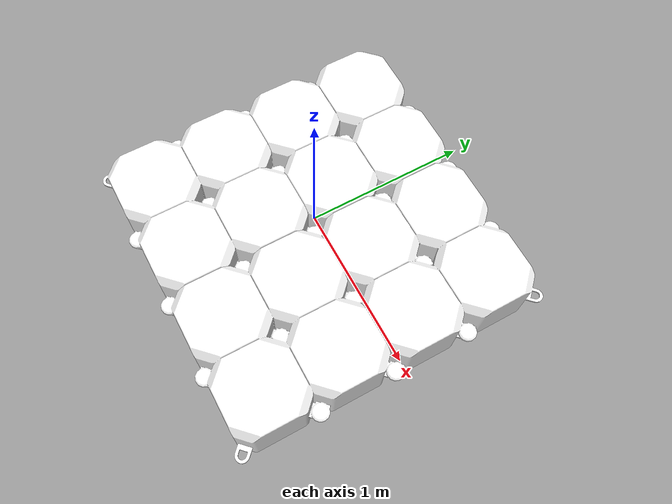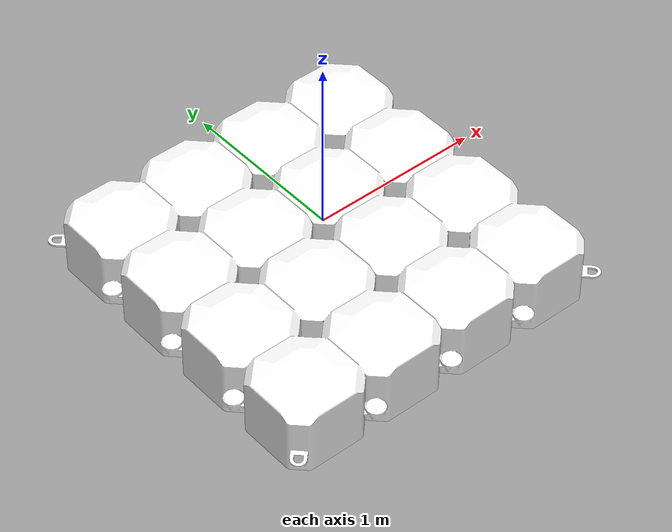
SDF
<?xml version="1.0"?>
<sdf version="1.5">
  <model name="dock_block_4x4">
    <static>true</static>
    <link name="link">
      <collision name="collision">
        <pose>0 0 0 0 0 0</pose>
        <geometry>
          <box>
            <size>2 2 0.4</size>
          </box>
        </geometry>
      </collision>
      <visual name="visual">
        <pose>-0.25 0.25 0.0 0 0 0 </pose>
        <geometry>
          <mesh>
            <uri>mesh/dock_block_4x4.dae</uri>
          </mesh>
        </geometry>
        <material>
          <diffuse>1.0 1.0 1.0</diffuse>
          <specular>1.0 1.0 1.0</specular>
          <pbr>
            <metal>
              <albedo_map>file://dock_block_4x4/mesh/DockCubes_Albedo.png</albedo_map>
              <normal_map>file://dock_block_4x4/mesh/DockCubes_Normal.png</normal_map>
              <roughness_map>file://dock_block_4x4/mesh/DockCubes_Roughness.png</roughness_map>
              <metalness_map>file://dock_block_4x4/mesh/DockCubes_Metalness.png</metalness_map>
            </metal>
          </pbr>
        </material>
      </visual>
    </link>
  </model>
</sdf>
